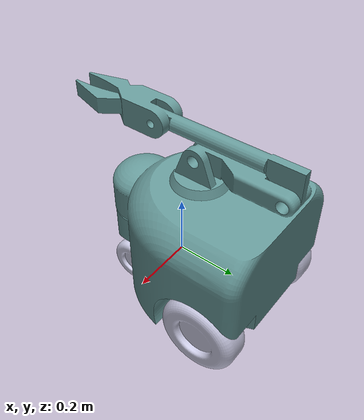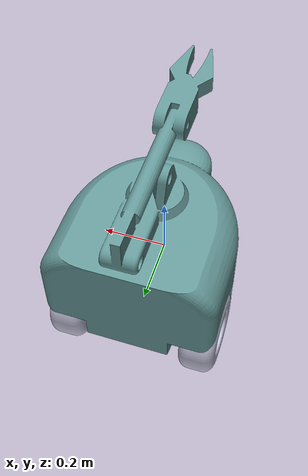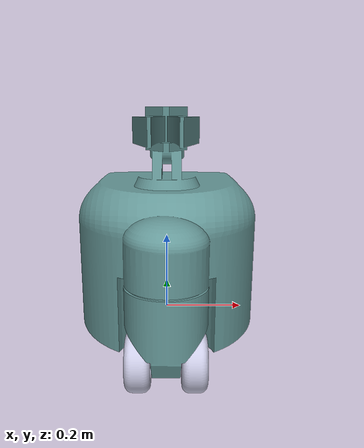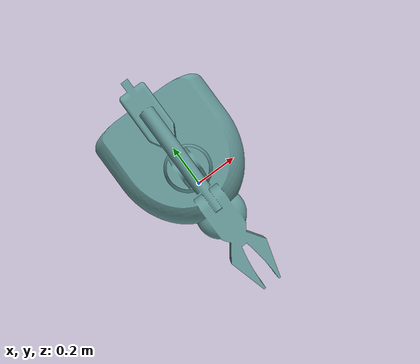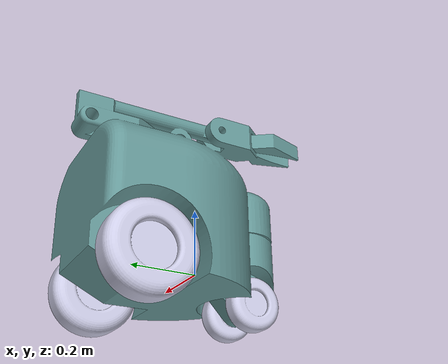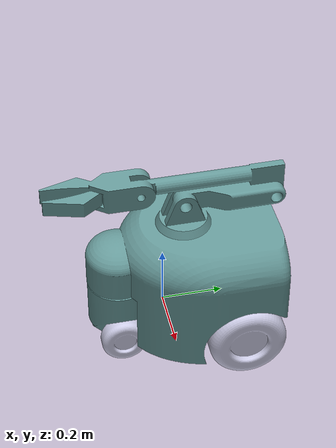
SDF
<?xml version='1.0'?>
<sdf version='1.6'>
  <model name='robot'>
    <link name='link_0'>
      <pose frame=''>0.000107 0.056182 0.119239 0 -0 0</pose>
      <inertial>
        <mass>1</mass>
        <inertia>
          <ixx>0.166667</ixx>
          <ixy>0</ixy>
          <ixz>0</ixz>
          <iyy>0.166667</iyy>
          <iyz>0</iyz>
          <izz>0.166667</izz>
        </inertia>
        <pose frame=''>0 0 0 0 -0 0</pose>
      </inertial>
      <gravity>1</gravity>
      <self_collide>0</self_collide>
      <kinematic>0</kinematic>
      <visual name='visual'>
        <pose frame=''>0 0 0 0 -0 0</pose>
        <geometry>
          <mesh>
            <uri>/home/workspace/paul_robot/model/meshes/Body-2.dae</uri>
            <scale>1 1 1</scale>
          </mesh>
        </geometry>
        <material>
          <lighting>1</lighting>
          <script>
            <uri>file://media/materials/scripts/gazebo.material</uri>
            <name>Gazebo/Grey</name>
          </script>
          <shader type='pixel'>
            <normal_map>__default__</normal_map>
          </shader>
          <ambient>0.4 0.6 0.6 1</ambient>
          <diffuse>0.7 0.7 0.7 1</diffuse>
          <specular>0.01 0.01 0.01 1</specular>
          <emissive>0 0 0 1</emissive>
        </material>
        <transparency>0</transparency>
        <cast_shadows>1</cast_shadows>
      </visual>
      <collision name='collision'>
        <laser_retro>0</laser_retro>
        <max_contacts>10</max_contacts>
        <pose frame=''>0 0 0 0 -0 0</pose>
        <geometry>
          <mesh>
            <uri>/home/workspace/paul_robot/model/meshes/Body-2.dae</uri>
            <scale>1 1 1</scale>
          </mesh>
        </geometry>
        <surface>
          <friction>
            <ode>
              <mu>1</mu>
              <mu2>1</mu2>
              <fdir1>0 0 0</fdir1>
              <slip1>0</slip1>
              <slip2>0</slip2>
            </ode>
            <torsional>
              <coefficient>1</coefficient>
              <patch_radius>0</patch_radius>
              <surface_radius>0</surface_radius>
              <use_patch_radius>1</use_patch_radius>
              <ode>
                <slip>0</slip>
              </ode>
            </torsional>
          </friction>
          <bounce>
            <restitution_coefficient>0</restitution_coefficient>
            <threshold>1e+06</threshold>
          </bounce>
          <contact>
            <collide_without_contact>0</collide_without_contact>
            <collide_without_contact_bitmask>1</collide_without_contact_bitmask>
            <collide_bitmask>1</collide_bitmask>
            <ode>
              <soft_cfm>0</soft_cfm>
              <soft_erp>0.2</soft_erp>
              <kp>1e+13</kp>
              <kd>1</kd>
              <max_vel>0.01</max_vel>
              <min_depth>0</min_depth>
            </ode>
            <bullet>
              <split_impulse>1</split_impulse>
              <split_impulse_penetration_threshold>-0.01</split_impulse_penetration_threshold>
              <soft_cfm>0</soft_cfm>
              <soft_erp>0.2</soft_erp>
              <kp>1e+13</kp>
              <kd>1</kd>
            </bullet>
          </contact>
        </surface>
      </collision>
    </link>
    <link name='link_1'>
      <pose frame=''>0.000407 0.233606 -0.029891 0 -0 0</pose>
      <inertial>
        <mass>1</mass>
        <inertia>
          <ixx>0.166667</ixx>
          <ixy>0</ixy>
          <ixz>0</ixz>
          <iyy>0.166667</iyy>
          <iyz>0</iyz>
          <izz>0.166667</izz>
        </inertia>
        <pose frame=''>0 0 0 0 -0 0</pose>
      </inertial>
      <gravity>1</gravity>
      <self_collide>0</self_collide>
      <kinematic>0</kinematic>
      <visual name='visual'>
        <pose frame=''>0 0 0 0 -0 0</pose>
        <geometry>
          <mesh>
            <uri>/home/workspace/paul_robot/model/meshes/BackWheels.dae</uri>
            <scale>1 1 1</scale>
          </mesh>
        </geometry>
        <material>
          <lighting>1</lighting>
          <script>
            <uri>file://media/materials/scripts/gazebo.material</uri>
            <name>Gazebo/Grey</name>
          </script>
          <shader type='pixel'>
            <normal_map>__default__</normal_map>
          </shader>
          <ambient>0.8 0.8 0.9 1</ambient>
          <diffuse>0.7 0.7 0.7 1</diffuse>
          <specular>0.01 0.01 0.01 1</specular>
          <emissive>0 0 0 1</emissive>
        </material>
        <transparency>0</transparency>
        <cast_shadows>1</cast_shadows>
      </visual>
      <collision name='collision'>
        <laser_retro>0</laser_retro>
        <max_contacts>10</max_contacts>
        <pose frame=''>0 0 0 0 -0 0</pose>
        <geometry>
          <mesh>
            <uri>/home/workspace/paul_robot/model/meshes/BackWheels.dae</uri>
            <scale>1 1 1</scale>
          </mesh>
        </geometry>
        <surface>
          <friction>
            <ode>
              <mu>1</mu>
              <mu2>1</mu2>
              <fdir1>0 0 0</fdir1>
              <slip1>0</slip1>
              <slip2>0</slip2>
            </ode>
            <torsional>
              <coefficient>1</coefficient>
              <patch_radius>0</patch_radius>
              <surface_radius>0</surface_radius>
              <use_patch_radius>1</use_patch_radius>
              <ode>
                <slip>0</slip>
              </ode>
            </torsional>
          </friction>
          <bounce>
            <restitution_coefficient>0</restitution_coefficient>
            <threshold>1e+06</threshold>
          </bounce>
          <contact>
            <collide_without_contact>0</collide_without_contact>
            <collide_without_contact_bitmask>1</collide_without_contact_bitmask>
            <collide_bitmask>1</collide_bitmask>
            <ode>
              <soft_cfm>0</soft_cfm>
              <soft_erp>0.2</soft_erp>
              <kp>1e+13</kp>
              <kd>1</kd>
              <max_vel>0.01</max_vel>
              <min_depth>0</min_depth>
            </ode>
            <bullet>
              <split_impulse>1</split_impulse>
              <split_impulse_penetration_threshold>-0.01</split_impulse_penetration_threshold>
              <soft_cfm>0</soft_cfm>
              <soft_erp>0.2</soft_erp>
              <kp>1e+13</kp>
              <kd>1</kd>
            </bullet>
          </contact>
        </surface>
      </collision>
    </link>
    <link name='link_2'>
      <pose frame=''>-0.000257 -0.145593 -0.002745 0 -0 0</pose>
      <inertial>
        <mass>1</mass>
        <inertia>
          <ixx>0.166667</ixx>
          <ixy>0</ixy>
          <ixz>0</ixz>
          <iyy>0.166667</iyy>
          <iyz>0</iyz>
          <izz>0.166667</izz>
        </inertia>
        <pose frame=''>0 0 0 0 -0 0</pose>
      </inertial>
      <gravity>1</gravity>
      <self_collide>0</self_collide>
      <kinematic>0</kinematic>
      <visual name='visual'>
        <pose frame=''>0 0 0 0 -0 0</pose>
        <geometry>
          <mesh>
            <uri>/home/workspace/paul_robot/model/meshes/FWPivot.dae</uri>
            <scale>1 1 1</scale>
          </mesh>
        </geometry>
        <material>
          <lighting>1</lighting>
          <script>
            <uri>file://media/materials/scripts/gazebo.material</uri>
            <name>Gazebo/Grey</name>
          </script>
          <shader type='pixel'>
            <normal_map>__default__</normal_map>
          </shader>
          <ambient>0.4 0.6 0.6 1</ambient>
          <diffuse>0.7 0.7 0.7 1</diffuse>
          <specular>0.01 0.01 0.01 1</specular>
          <emissive>0 0 0 1</emissive>
        </material>
        <transparency>0</transparency>
        <cast_shadows>1</cast_shadows>
      </visual>
      <collision name='collision'>
        <laser_retro>0</laser_retro>
        <max_contacts>10</max_contacts>
        <pose frame=''>0 0 0 0 -0 0</pose>
        <geometry>
          <mesh>
            <uri>/home/workspace/paul_robot/model/meshes/FWPivot.dae</uri>
            <scale>1 1 1</scale>
          </mesh>
        </geometry>
        <surface>
          <friction>
            <ode>
              <mu>1</mu>
              <mu2>1</mu2>
              <fdir1>0 0 0</fdir1>
              <slip1>0</slip1>
              <slip2>0</slip2>
            </ode>
            <torsional>
              <coefficient>1</coefficient>
              <patch_radius>0</patch_radius>
              <surface_radius>0</surface_radius>
              <use_patch_radius>1</use_patch_radius>
              <ode>
                <slip>0</slip>
              </ode>
            </torsional>
          </friction>
          <bounce>
            <restitution_coefficient>0</restitution_coefficient>
            <threshold>1e+06</threshold>
          </bounce>
          <contact>
            <collide_without_contact>0</collide_without_contact>
            <collide_without_contact_bitmask>1</collide_without_contact_bitmask>
            <collide_bitmask>1</collide_bitmask>
            <ode>
              <soft_cfm>0</soft_cfm>
              <soft_erp>0.2</soft_erp>
              <kp>1e+13</kp>
              <kd>1</kd>
              <max_vel>0.01</max_vel>
              <min_depth>0</min_depth>
            </ode>
            <bullet>
              <split_impulse>1</split_impulse>
              <split_impulse_penetration_threshold>-0.01</split_impulse_penetration_threshold>
              <soft_cfm>0</soft_cfm>
              <soft_erp>0.2</soft_erp>
              <kp>1e+13</kp>
              <kd>1</kd>
            </bullet>
          </contact>
        </surface>
      </collision>
    </link>
    <link name='link_3'>
      <pose frame=''>-0.000258 -0.144196 -0.086604 0 -0 0</pose>
      <inertial>
        <mass>1</mass>
        <inertia>
          <ixx>0.166667</ixx>
          <ixy>0</ixy>
          <ixz>0</ixz>
          <iyy>0.166667</iyy>
          <iyz>0</iyz>
          <izz>0.166667</izz>
        </inertia>
        <pose frame=''>0 0 0 0 -0 0</pose>
      </inertial>
      <gravity>1</gravity>
      <self_collide>0</self_collide>
      <kinematic>0</kinematic>
      <visual name='visual'>
        <pose frame=''>0 0 0 0 -0 0</pose>
        <geometry>
          <mesh>
            <uri>/home/workspace/paul_robot/model/meshes/FrontWheels.dae</uri>
            <scale>1 1 1</scale>
          </mesh>
        </geometry>
        <material>
          <lighting>1</lighting>
          <script>
            <uri>file://media/materials/scripts/gazebo.material</uri>
            <name>Gazebo/Grey</name>
          </script>
          <shader type='pixel'>
            <normal_map>__default__</normal_map>
          </shader>
          <ambient>0.8 0.8 0.9 1</ambient>
          <diffuse>0.7 0.7 0.7 1</diffuse>
          <specular>0.01 0.01 0.01 1</specular>
          <emissive>0 0 0 1</emissive>
        </material>
        <transparency>0</transparency>
        <cast_shadows>1</cast_shadows>
      </visual>
      <collision name='collision'>
        <laser_retro>0</laser_retro>
        <max_contacts>10</max_contacts>
        <pose frame=''>0 0 0 0 -0 0</pose>
        <geometry>
          <mesh>
            <uri>/home/workspace/paul_robot/model/meshes/FrontWheels.dae</uri>
            <scale>1 1 1</scale>
          </mesh>
        </geometry>
        <surface>
          <friction>
            <ode>
              <mu>1</mu>
              <mu2>1</mu2>
              <fdir1>0 0 0</fdir1>
              <slip1>0</slip1>
              <slip2>0</slip2>
            </ode>
            <torsional>
              <coefficient>1</coefficient>
              <patch_radius>0</patch_radius>
              <surface_radius>0</surface_radius>
              <use_patch_radius>1</use_patch_radius>
              <ode>
                <slip>0</slip>
              </ode>
            </torsional>
          </friction>
          <bounce>
            <restitution_coefficient>0</restitution_coefficient>
            <threshold>1e+06</threshold>
          </bounce>
          <contact>
            <collide_without_contact>0</collide_without_contact>
            <collide_without_contact_bitmask>1</collide_without_contact_bitmask>
            <collide_bitmask>1</collide_bitmask>
            <ode>
              <soft_cfm>0</soft_cfm>
              <soft_erp>0.2</soft_erp>
              <kp>1e+13</kp>
              <kd>1</kd>
              <max_vel>0.01</max_vel>
              <min_depth>0</min_depth>
            </ode>
            <bullet>
              <split_impulse>1</split_impulse>
              <split_impulse_penetration_threshold>-0.01</split_impulse_penetration_threshold>
              <soft_cfm>0</soft_cfm>
              <soft_erp>0.2</soft_erp>
              <kp>1e+13</kp>
              <kd>1</kd>
            </bullet>
          </contact>
        </surface>
      </collision>
    </link>
    <joint name='link_0_JOINT_0' type='revolute'>
      <parent>link_0</parent>
      <child>link_1</child>
      <pose frame=''>0 0 0 0 -0 0</pose>
      <axis>
        <xyz>1 0 0</xyz>
        <use_parent_model_frame>0</use_parent_model_frame>
        <limit>
          <lower>-1.79769e+308</lower>
          <upper>1.79769e+308</upper>
          <effort>-1</effort>
          <velocity>-1</velocity>
        </limit>
        <dynamics>
          <spring_reference>0</spring_reference>
          <spring_stiffness>0</spring_stiffness>
          <damping>0</damping>
        </dynamics>
      </axis>
      <physics>
        <ode>
          <limit>
            <cfm>0</cfm>
            <erp>0.2</erp>
          </limit>
          <suspension>
            <cfm>0</cfm>
            <erp>0.2</erp>
          </suspension>
        </ode>
      </physics>
    </joint>
    <joint name='link_0_JOINT_1' type='revolute'>
      <parent>link_0</parent>
      <child>link_2</child>
      <pose frame=''>0 0 0 -0.01 0 0</pose>
      <axis>
        <xyz>0 0 1</xyz>
        <use_parent_model_frame>0</use_parent_model_frame>
        <limit>
          <lower>-1.79769e+308</lower>
          <upper>1.79769e+308</upper>
          <effort>-1</effort>
          <velocity>-1</velocity>
        </limit>
        <dynamics>
          <spring_reference>0</spring_reference>
          <spring_stiffness>0</spring_stiffness>
          <damping>0</damping>
          <friction>0</friction>
        </dynamics>
      </axis>
      <physics>
        <ode>
          <limit>
            <cfm>0</cfm>
            <erp>0.2</erp>
          </limit>
          <suspension>
            <cfm>0</cfm>
            <erp>0.2</erp>
          </suspension>
        </ode>
      </physics>
    </joint>
    <joint name='link_2_JOINT_2' type='revolute'>
      <parent>link_2</parent>
      <child>link_3</child>
      <pose frame=''>0 0 0 0 -0 0</pose>
      <axis>
        <xyz>1 0 0</xyz>
        <use_parent_model_frame>0</use_parent_model_frame>
        <limit>
          <lower>-1.79769e+308</lower>
          <upper>1.79769e+308</upper>
          <effort>-1</effort>
          <velocity>-1</velocity>
        </limit>
        <dynamics>
          <spring_reference>0</spring_reference>
          <spring_stiffness>0</spring_stiffness>
          <damping>0</damping>
        </dynamics>
      </axis>
      <physics>
        <ode>
          <limit>
            <cfm>0</cfm>
            <erp>0.2</erp>
          </limit>
          <suspension>
            <cfm>0</cfm>
            <erp>0.2</erp>
          </suspension>
        </ode>
      </physics>
    </joint>
    <static>0</static>
    <allow_auto_disable>1</allow_auto_disable>
  </model>
</sdf>
